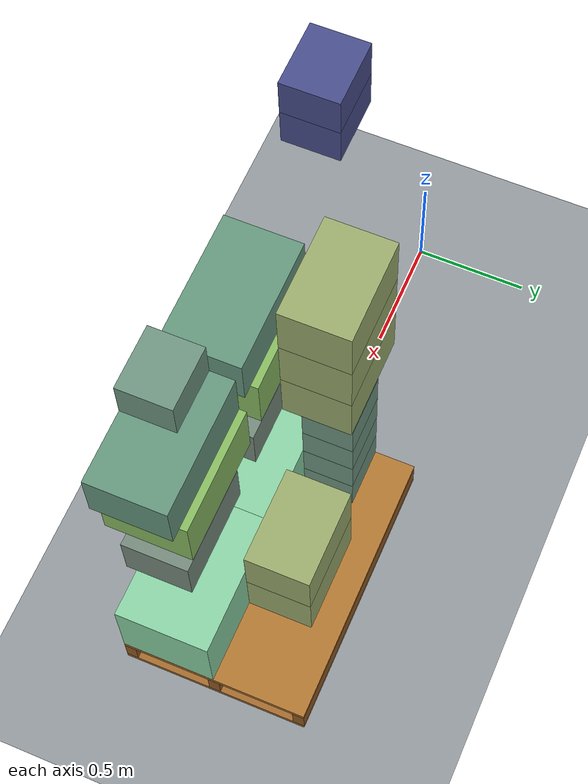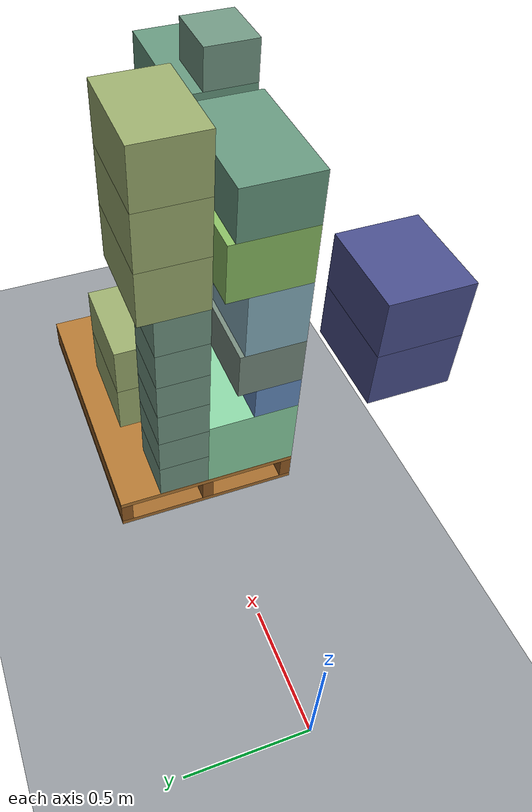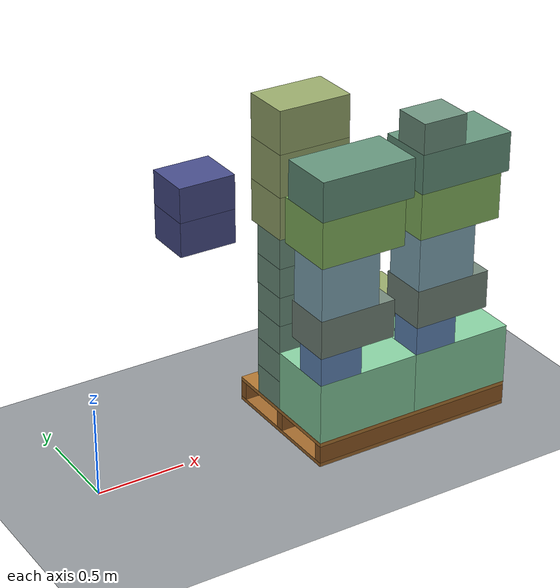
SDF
<sdf version="1.10">
 <world name="pallet_stacker_world">
  <model name="ground_plane">
   <static>true</static>
   <pose>-2.022 0 0 0 0 0</pose>
   <link name="link">
    <collision name="collision">
     <max_contacts>4</max_contacts>
     <geometry><plane><normal>0 0 1</normal><size>20 20</size></plane></geometry>
     <surface>
      <friction>
       <ode><mu>0.8</mu><mu2>0.8</mu2></ode>
       <bullet><friction>0.8</friction><friction2>0.8</friction2></bullet>
      </friction>
      <bounce><restitution_coefficient>0</restitution_coefficient><threshold>100000</threshold></bounce>
      <contact><ode><kp>1000000</kp><kd>100</kd><max_vel>1</max_vel><min_depth>0.0005</min_depth></ode></contact>
     </surface>
    </collision>
    <visual name="visual">
     <geometry><plane><normal>0 0 1</normal><size>20 20</size></plane></geometry>
     <material><ambient>0.58 0.6 0.62 1</ambient><diffuse>0.58 0.6 0.62 1</diffuse></material>
    </visual>
   </link>
  </model>
  <model name="box_p01_0023_CANS_023">
   <pose>0.45 -0.275 1.556 0 0 0</pose>
   <static>false</static>
   <link name="body">
    <inertial>
     <mass>10</mass>
     <inertia>
      <ixx>0.0790833333333</ixx>
      <ixy>0</ixy>
      <ixz>0</ixz>
      <iyy>0.102</iyy>
      <iyz>0</iyz>
      <izz>0.127083333333</izz>
     </inertia>
    </inertial>
    <collision name="collision">
     <max_contacts>4</max_contacts>
     <geometry><box><size>0.3 0.25 0.18</size></box></geometry>
     <surface>
      <friction>
       <ode><mu>0.55</mu><mu2>0.55</mu2></ode>
       <bullet><friction>0.55</friction><friction2>0.55</friction2></bullet>
      </friction>
      <bounce><restitution_coefficient>0</restitution_coefficient><threshold>100000</threshold></bounce>
      <contact><ode><kp>1000000</kp><kd>100</kd><max_vel>1</max_vel><min_depth>0.0005</min_depth></ode></contact>
     </surface>
    </collision>
    <visual name="visual">
     <geometry><box><size>0.3 0.25 0.18</size></box></geometry>
     <material>
      <ambient>0.211764705882 0.229411764706 0.411764705882 1</ambient>
      <diffuse>0.282352941176 0.305882352941 0.549019607843 1</diffuse>
      <specular>0.08 0.08 0.08 1</specular>
     </material>
    </visual>
   </link>
  </model>
  <model name="box_p01_0024_CANS_024">
   <pose>0.45 -0.275 1.736 0 0 0</pose>
   <static>false</static>
   <link name="body">
    <inertial>
     <mass>10</mass>
     <inertia>
      <ixx>0.0790833333333</ixx>
      <ixy>0</ixy>
      <ixz>0</ixz>
      <iyy>0.102</iyy>
      <iyz>0</iyz>
      <izz>0.127083333333</izz>
     </inertia>
    </inertial>
    <collision name="collision">
     <max_contacts>4</max_contacts>
     <geometry><box><size>0.3 0.25 0.18</size></box></geometry>
     <surface>
      <friction>
       <ode><mu>0.55</mu><mu2>0.55</mu2></ode>
       <bullet><friction>0.55</friction><friction2>0.55</friction2></bullet>
      </friction>
      <bounce><restitution_coefficient>0</restitution_coefficient><threshold>100000</threshold></bounce>
      <contact><ode><kp>1000000</kp><kd>100</kd><max_vel>1</max_vel><min_depth>0.0005</min_depth></ode></contact>
     </surface>
    </collision>
    <visual name="visual">
     <geometry><box><size>0.3 0.25 0.18</size></box></geometry>
     <material>
      <ambient>0.211764705882 0.229411764706 0.411764705882 1</ambient>
      <diffuse>0.282352941176 0.305882352941 0.549019607843 1</diffuse>
      <specular>0.08 0.08 0.08 1</specular>
     </material>
    </visual>
   </link>
  </model>
  <model name="pallet_02_PALLET_002" canonical_link="body">
   <pose>1.7 0 0.001 0 0 0</pose>
   <static>false</static>
   <frame name="loading_surface" attached_to="body"><pose relative_to="body">0 0 0.144 0 0 0</pose></frame>
   <link name="body">
    <inertial>
     <pose>0 0 0.072 0 0 0</pose>
     <mass>25</mass>
     <inertia>
      <ixx>1.70896776228</ixx>
      <ixy>0</ixy>
      <ixz>0</ixz>
      <iyy>3.07216082337</iyy>
      <iyz>0</iyz>
      <izz>4.63680693891</izz>
     </inertia>
    </inertial>
    <collision name="bottom_deck_collision">
     <max_contacts>4</max_contacts>
     <pose>0 0 0.011 0 0 0</pose>
     <geometry><box><size>1.2 0.8 0.022</size></box></geometry>
     <surface>
      <friction>
       <ode><mu>0.65</mu><mu2>0.65</mu2></ode>
       <bullet><friction>0.65</friction><friction2>0.65</friction2></bullet>
      </friction>
      <bounce><restitution_coefficient>0</restitution_coefficient><threshold>100000</threshold></bounce>
      <contact><ode><kp>1000000</kp><kd>100</kd><max_vel>1</max_vel><min_depth>0.0005</min_depth></ode></contact>
     </surface>
    </collision>
    <visual name="bottom_deck_visual">
     <pose>0 0 0.011 0 0 0</pose>
     <geometry><box><size>1.2 0.8 0.022</size></box></geometry>
     <material>
      <ambient>0.46 0.28 0.10 1</ambient>
      <diffuse>0.64 0.42 0.18 1</diffuse>
      <specular>0.03 0.03 0.03 1</specular>
     </material>
    </visual>
    <collision name="left_stringer_collision">
     <max_contacts>4</max_contacts>
     <pose>0 -0.375 0.072 0 0 0</pose>
     <geometry><box><size>1.2 0.05 0.1</size></box></geometry>
     <surface>
      <friction>
       <ode><mu>0.65</mu><mu2>0.65</mu2></ode>
       <bullet><friction>0.65</friction><friction2>0.65</friction2></bullet>
      </friction>
      <bounce><restitution_coefficient>0</restitution_coefficient><threshold>100000</threshold></bounce>
      <contact><ode><kp>1000000</kp><kd>100</kd><max_vel>1</max_vel><min_depth>0.0005</min_depth></ode></contact>
     </surface>
    </collision>
    <visual name="left_stringer_visual">
     <pose>0 -0.375 0.072 0 0 0</pose>
     <geometry><box><size>1.2 0.05 0.1</size></box></geometry>
     <material>
      <ambient>0.42 0.25 0.09 1</ambient>
      <diffuse>0.58 0.36 0.14 1</diffuse>
      <specular>0.03 0.03 0.03 1</specular>
     </material>
    </visual>
    <collision name="centre_stringer_collision">
     <max_contacts>4</max_contacts>
     <pose>0 0 0.072 0 0 0</pose>
     <geometry><box><size>1.2 0.05 0.1</size></box></geometry>
     <surface>
      <friction>
       <ode><mu>0.65</mu><mu2>0.65</mu2></ode>
       <bullet><friction>0.65</friction><friction2>0.65</friction2></bullet>
      </friction>
      <bounce><restitution_coefficient>0</restitution_coefficient><threshold>100000</threshold></bounce>
      <contact><ode><kp>1000000</kp><kd>100</kd><max_vel>1</max_vel><min_depth>0.0005</min_depth></ode></contact>
     </surface>
    </collision>
    <visual name="centre_stringer_visual">
     <pose>0 0 0.072 0 0 0</pose>
     <geometry><box><size>1.2 0.05 0.1</size></box></geometry>
     <material>
      <ambient>0.42 0.25 0.09 1</ambient>
      <diffuse>0.58 0.36 0.14 1</diffuse>
      <specular>0.03 0.03 0.03 1</specular>
     </material>
    </visual>
    <collision name="right_stringer_collision">
     <max_contacts>4</max_contacts>
     <pose>0 0.375 0.072 0 0 0</pose>
     <geometry><box><size>1.2 0.05 0.1</size></box></geometry>
     <surface>
      <friction>
       <ode><mu>0.65</mu><mu2>0.65</mu2></ode>
       <bullet><friction>0.65</friction><friction2>0.65</friction2></bullet>
      </friction>
      <bounce><restitution_coefficient>0</restitution_coefficient><threshold>100000</threshold></bounce>
      <contact><ode><kp>1000000</kp><kd>100</kd><max_vel>1</max_vel><min_depth>0.0005</min_depth></ode></contact>
     </surface>
    </collision>
    <visual name="right_stringer_visual">
     <pose>0 0.375 0.072 0 0 0</pose>
     <geometry><box><size>1.2 0.05 0.1</size></box></geometry>
     <material>
      <ambient>0.42 0.25 0.09 1</ambient>
      <diffuse>0.58 0.36 0.14 1</diffuse>
      <specular>0.03 0.03 0.03 1</specular>
     </material>
    </visual>
    <collision name="top_deck_collision">
     <max_contacts>4</max_contacts>
     <pose>0 0 0.133 0 0 0</pose>
     <geometry><box><size>1.2 0.8 0.022</size></box></geometry>
     <surface>
      <friction>
       <ode><mu>0.65</mu><mu2>0.65</mu2></ode>
       <bullet><friction>0.65</friction><friction2>0.65</friction2></bullet>
      </friction>
      <bounce><restitution_coefficient>0</restitution_coefficient><threshold>100000</threshold></bounce>
      <contact><ode><kp>1000000</kp><kd>100</kd><max_vel>1</max_vel><min_depth>0.0005</min_depth></ode></contact>
     </surface>
    </collision>
    <visual name="top_deck_visual">
     <pose>0 0 0.133 0 0 0</pose>
     <geometry><box><size>1.2 0.8 0.022</size></box></geometry>
     <material>
      <ambient>0.50 0.31 0.11 1</ambient>
      <diffuse>0.70 0.47 0.20 1</diffuse>
      <specular>0.03 0.03 0.03 1</specular>
     </material>
    </visual>
   </link>
  </model>
  <model name="box_p02_0001_TISSUE_M1">
   <pose>1.4 -0.2 0.321 0 0 0</pose>
   <static>false</static>
   <link name="body">
    <inertial>
     <mass>5</mass>
     <inertia>
      <ixx>0.117708333333</ixx>
      <ixy>0</ixy>
      <ixz>0</ixz>
      <iyy>0.201041666667</iyy>
      <iyz>0</iyz>
      <izz>0.216666666667</izz>
     </inertia>
    </inertial>
    <collision name="collision">
     <max_contacts>4</max_contacts>
     <geometry><box><size>0.6 0.4 0.35</size></box></geometry>
     <surface>
      <friction>
       <ode><mu>0.55</mu><mu2>0.55</mu2></ode>
       <bullet><friction>0.55</friction><friction2>0.55</friction2></bullet>
      </friction>
      <bounce><restitution_coefficient>0</restitution_coefficient><threshold>100000</threshold></bounce>
      <contact><ode><kp>1000000</kp><kd>100</kd><max_vel>1</max_vel><min_depth>0.0005</min_depth></ode></contact>
     </surface>
    </collision>
    <visual name="visual">
     <geometry><box><size>0.6 0.4 0.35</size></box></geometry>
     <material>
      <ambient>0.405882352941 0.620588235294 0.482352941176 1</ambient>
      <diffuse>0.541176470588 0.827450980392 0.643137254902 1</diffuse>
      <specular>0.08 0.08 0.08 1</specular>
     </material>
    </visual>
   </link>
  </model>
  <model name="box_p02_0002_SAUCE_M1">
   <pose>1.225 -0.3 0.576 0 0 0</pose>
   <static>false</static>
   <link name="body">
    <inertial>
     <mass>8</mass>
     <inertia>
      <ixx>0.0437333333333</ixx>
      <ixy>0</ixy>
      <ixz>0</ixz>
      <iyy>0.0587333333333</iyy>
      <iyz>0</iyz>
      <izz>0.0683333333333</izz>
     </inertia>
    </inertial>
    <collision name="collision">
     <max_contacts>4</max_contacts>
     <geometry><box><size>0.25 0.2 0.16</size></box></geometry>
     <surface>
      <friction>
       <ode><mu>0.55</mu><mu2>0.55</mu2></ode>
       <bullet><friction>0.55</friction><friction2>0.55</friction2></bullet>
      </friction>
      <bounce><restitution_coefficient>0</restitution_coefficient><threshold>100000</threshold></bounce>
      <contact><ode><kp>1000000</kp><kd>100</kd><max_vel>1</max_vel><min_depth>0.0005</min_depth></ode></contact>
     </surface>
    </collision>
    <visual name="visual">
     <geometry><box><size>0.25 0.2 0.16</size></box></geometry>
     <material>
      <ambient>0.294117647059 0.411764705882 0.564705882353 1</ambient>
      <diffuse>0.392156862745 0.549019607843 0.752941176471 1</diffuse>
      <specular>0.08 0.08 0.08 1</specular>
     </material>
    </visual>
   </link>
  </model>
  <model name="box_p02_0003_PASTA_M1">
   <pose>1.325 -0.26 0.766 0 0 0</pose>
   <static>false</static>
   <link name="body">
    <inertial>
     <mass>6</mass>
     <inertia><ixx>0.0634</ixx><ixy>0</ixy><ixz>0</ixz><iyy>0.12545</iyy><iyz>0</iyz><izz>0.14045</izz></inertia>
    </inertial>
    <collision name="collision">
     <max_contacts>4</max_contacts>
     <geometry><box><size>0.45 0.28 0.22</size></box></geometry>
     <surface>
      <friction>
       <ode><mu>0.55</mu><mu2>0.55</mu2></ode>
       <bullet><friction>0.55</friction><friction2>0.55</friction2></bullet>
      </friction>
      <bounce><restitution_coefficient>0</restitution_coefficient><threshold>100000</threshold></bounce>
      <contact><ode><kp>1000000</kp><kd>100</kd><max_vel>1</max_vel><min_depth>0.0005</min_depth></ode></contact>
     </surface>
    </collision>
    <visual name="visual">
     <geometry><box><size>0.45 0.28 0.22</size></box></geometry>
     <material>
      <ambient>0.347058823529 0.405882352941 0.367647058824 1</ambient>
      <diffuse>0.462745098039 0.541176470588 0.490196078431 1</diffuse>
      <specular>0.08 0.08 0.08 1</specular>
     </material>
    </visual>
   </link>
  </model>
  <model name="box_p02_0004_OIL_M1">
   <pose>1.275 -0.27 1.026 0 0 0</pose>
   <static>false</static>
   <link name="body">
    <inertial>
     <mass>9</mass>
     <inertia><ixx>0.1182</ixx><ixy>0</ixy><ixz>0</ixz><iyy>0.159375</iyy><iyz>0</iyz><izz>0.142575</izz></inertia>
    </inertial>
    <collision name="collision">
     <max_contacts>4</max_contacts>
     <geometry><box><size>0.35 0.26 0.3</size></box></geometry>
     <surface>
      <friction>
       <ode><mu>0.55</mu><mu2>0.55</mu2></ode>
       <bullet><friction>0.55</friction><friction2>0.55</friction2></bullet>
      </friction>
      <bounce><restitution_coefficient>0</restitution_coefficient><threshold>100000</threshold></bounce>
      <contact><ode><kp>1000000</kp><kd>100</kd><max_vel>1</max_vel><min_depth>0.0005</min_depth></ode></contact>
     </surface>
    </collision>
    <visual name="visual">
     <geometry><box><size>0.35 0.26 0.3</size></box></geometry>
     <material>
      <ambient>0.394117647059 0.514705882353 0.558823529412 1</ambient>
      <diffuse>0.525490196078 0.686274509804 0.745098039216 1</diffuse>
      <specular>0.08 0.08 0.08 1</specular>
     </material>
    </visual>
   </link>
  </model>
  <model name="box_p02_0005_PET_M1">
   <pose>1.35 -0.225 1.306 0 0 0</pose>
   <static>false</static>
   <link name="body">
    <inertial>
     <mass>11</mass>
     <inertia>
      <ixx>0.174258333333</ixx>
      <ixy>0</ixy>
      <ixz>0</ixz>
      <iyy>0.291133333333</iyy>
      <iyz>0</iyz>
      <izz>0.341458333333</izz>
     </inertia>
    </inertial>
    <collision name="collision">
     <max_contacts>4</max_contacts>
     <geometry><box><size>0.5 0.35 0.26</size></box></geometry>
     <surface>
      <friction>
       <ode><mu>0.55</mu><mu2>0.55</mu2></ode>
       <bullet><friction>0.55</friction><friction2>0.55</friction2></bullet>
      </friction>
      <bounce><restitution_coefficient>0</restitution_coefficient><threshold>100000</threshold></bounce>
      <contact><ode><kp>1000000</kp><kd>100</kd><max_vel>1</max_vel><min_depth>0.0005</min_depth></ode></contact>
     </surface>
    </collision>
    <visual name="visual">
     <geometry><box><size>0.5 0.35 0.26</size></box></geometry>
     <material>
      <ambient>0.402941176471 0.552941176471 0.288235294118 1</ambient>
      <diffuse>0.537254901961 0.737254901961 0.38431372549 1</diffuse>
      <specular>0.08 0.08 0.08 1</specular>
     </material>
    </visual>
   </link>
  </model>
  <model name="box_p02_0006_SNACK_M1">
   <pose>1.375 -0.24 1.546 0 0 0</pose>
   <static>false</static>
   <link name="body">
    <inertial>
     <mass>3.5</mass>
     <inertia>
      <ixx>0.0439833333333</ixx>
      <ixy>0</ixy>
      <ixz>0</ixz>
      <iyy>0.102345833333</iyy>
      <iyz>0</iyz>
      <izz>0.118095833333</izz>
     </inertia>
    </inertial>
    <collision name="collision">
     <max_contacts>4</max_contacts>
     <geometry><box><size>0.55 0.32 0.22</size></box></geometry>
     <surface>
      <friction>
       <ode><mu>0.55</mu><mu2>0.55</mu2></ode>
       <bullet><friction>0.55</friction><friction2>0.55</friction2></bullet>
      </friction>
      <bounce><restitution_coefficient>0</restitution_coefficient><threshold>100000</threshold></bounce>
      <contact><ode><kp>1000000</kp><kd>100</kd><max_vel>1</max_vel><min_depth>0.0005</min_depth></ode></contact>
     </surface>
    </collision>
    <visual name="visual">
     <geometry><box><size>0.55 0.32 0.22</size></box></geometry>
     <material>
      <ambient>0.3 0.444117647059 0.370588235294 1</ambient>
      <diffuse>0.4 0.592156862745 0.494117647059 1</diffuse>
      <specular>0.08 0.08 0.08 1</specular>
     </material>
    </visual>
   </link>
  </model>
  <model name="box_p02_0007_TISSUE_M2">
   <pose>2 -0.2 0.321 0 0 0</pose>
   <static>false</static>
   <link name="body">
    <inertial>
     <mass>5</mass>
     <inertia>
      <ixx>0.117708333333</ixx>
      <ixy>0</ixy>
      <ixz>0</ixz>
      <iyy>0.201041666667</iyy>
      <iyz>0</iyz>
      <izz>0.216666666667</izz>
     </inertia>
    </inertial>
    <collision name="collision">
     <max_contacts>4</max_contacts>
     <geometry><box><size>0.6 0.4 0.35</size></box></geometry>
     <surface>
      <friction>
       <ode><mu>0.55</mu><mu2>0.55</mu2></ode>
       <bullet><friction>0.55</friction><friction2>0.55</friction2></bullet>
      </friction>
      <bounce><restitution_coefficient>0</restitution_coefficient><threshold>100000</threshold></bounce>
      <contact><ode><kp>1000000</kp><kd>100</kd><max_vel>1</max_vel><min_depth>0.0005</min_depth></ode></contact>
     </surface>
    </collision>
    <visual name="visual">
     <geometry><box><size>0.6 0.4 0.35</size></box></geometry>
     <material>
      <ambient>0.405882352941 0.620588235294 0.482352941176 1</ambient>
      <diffuse>0.541176470588 0.827450980392 0.643137254902 1</diffuse>
      <specular>0.08 0.08 0.08 1</specular>
     </material>
    </visual>
   </link>
  </model>
  <model name="box_p02_0008_SAUCE_M2">
   <pose>1.825 -0.3 0.576 0 0 0</pose>
   <static>false</static>
   <link name="body">
    <inertial>
     <mass>8</mass>
     <inertia>
      <ixx>0.0437333333333</ixx>
      <ixy>0</ixy>
      <ixz>0</ixz>
      <iyy>0.0587333333333</iyy>
      <iyz>0</iyz>
      <izz>0.0683333333333</izz>
     </inertia>
    </inertial>
    <collision name="collision">
     <max_contacts>4</max_contacts>
     <geometry><box><size>0.25 0.2 0.16</size></box></geometry>
     <surface>
      <friction>
       <ode><mu>0.55</mu><mu2>0.55</mu2></ode>
       <bullet><friction>0.55</friction><friction2>0.55</friction2></bullet>
      </friction>
      <bounce><restitution_coefficient>0</restitution_coefficient><threshold>100000</threshold></bounce>
      <contact><ode><kp>1000000</kp><kd>100</kd><max_vel>1</max_vel><min_depth>0.0005</min_depth></ode></contact>
     </surface>
    </collision>
    <visual name="visual">
     <geometry><box><size>0.25 0.2 0.16</size></box></geometry>
     <material>
      <ambient>0.294117647059 0.411764705882 0.564705882353 1</ambient>
      <diffuse>0.392156862745 0.549019607843 0.752941176471 1</diffuse>
      <specular>0.08 0.08 0.08 1</specular>
     </material>
    </visual>
   </link>
  </model>
  <model name="box_p02_0009_PASTA_M2">
   <pose>1.925 -0.26 0.766 0 0 0</pose>
   <static>false</static>
   <link name="body">
    <inertial>
     <mass>6</mass>
     <inertia><ixx>0.0634</ixx><ixy>0</ixy><ixz>0</ixz><iyy>0.12545</iyy><iyz>0</iyz><izz>0.14045</izz></inertia>
    </inertial>
    <collision name="collision">
     <max_contacts>4</max_contacts>
     <geometry><box><size>0.45 0.28 0.22</size></box></geometry>
     <surface>
      <friction>
       <ode><mu>0.55</mu><mu2>0.55</mu2></ode>
       <bullet><friction>0.55</friction><friction2>0.55</friction2></bullet>
      </friction>
      <bounce><restitution_coefficient>0</restitution_coefficient><threshold>100000</threshold></bounce>
      <contact><ode><kp>1000000</kp><kd>100</kd><max_vel>1</max_vel><min_depth>0.0005</min_depth></ode></contact>
     </surface>
    </collision>
    <visual name="visual">
     <geometry><box><size>0.45 0.28 0.22</size></box></geometry>
     <material>
      <ambient>0.347058823529 0.405882352941 0.367647058824 1</ambient>
      <diffuse>0.462745098039 0.541176470588 0.490196078431 1</diffuse>
      <specular>0.08 0.08 0.08 1</specular>
     </material>
    </visual>
   </link>
  </model>
  <model name="box_p02_0010_OIL_M2">
   <pose>1.875 -0.27 1.026 0 0 0</pose>
   <static>false</static>
   <link name="body">
    <inertial>
     <mass>9</mass>
     <inertia><ixx>0.1182</ixx><ixy>0</ixy><ixz>0</ixz><iyy>0.159375</iyy><iyz>0</iyz><izz>0.142575</izz></inertia>
    </inertial>
    <collision name="collision">
     <max_contacts>4</max_contacts>
     <geometry><box><size>0.35 0.26 0.3</size></box></geometry>
     <surface>
      <friction>
       <ode><mu>0.55</mu><mu2>0.55</mu2></ode>
       <bullet><friction>0.55</friction><friction2>0.55</friction2></bullet>
      </friction>
      <bounce><restitution_coefficient>0</restitution_coefficient><threshold>100000</threshold></bounce>
      <contact><ode><kp>1000000</kp><kd>100</kd><max_vel>1</max_vel><min_depth>0.0005</min_depth></ode></contact>
     </surface>
    </collision>
    <visual name="visual">
     <geometry><box><size>0.35 0.26 0.3</size></box></geometry>
     <material>
      <ambient>0.394117647059 0.514705882353 0.558823529412 1</ambient>
      <diffuse>0.525490196078 0.686274509804 0.745098039216 1</diffuse>
      <specular>0.08 0.08 0.08 1</specular>
     </material>
    </visual>
   </link>
  </model>
  <model name="box_p02_0011_PET_M2">
   <pose>1.95 -0.225 1.306 0 0 0</pose>
   <static>false</static>
   <link name="body">
    <inertial>
     <mass>11</mass>
     <inertia>
      <ixx>0.174258333333</ixx>
      <ixy>0</ixy>
      <ixz>0</ixz>
      <iyy>0.291133333333</iyy>
      <iyz>0</iyz>
      <izz>0.341458333333</izz>
     </inertia>
    </inertial>
    <collision name="collision">
     <max_contacts>4</max_contacts>
     <geometry><box><size>0.5 0.35 0.26</size></box></geometry>
     <surface>
      <friction>
       <ode><mu>0.55</mu><mu2>0.55</mu2></ode>
       <bullet><friction>0.55</friction><friction2>0.55</friction2></bullet>
      </friction>
      <bounce><restitution_coefficient>0</restitution_coefficient><threshold>100000</threshold></bounce>
      <contact><ode><kp>1000000</kp><kd>100</kd><max_vel>1</max_vel><min_depth>0.0005</min_depth></ode></contact>
     </surface>
    </collision>
    <visual name="visual">
     <geometry><box><size>0.5 0.35 0.26</size></box></geometry>
     <material>
      <ambient>0.402941176471 0.552941176471 0.288235294118 1</ambient>
      <diffuse>0.537254901961 0.737254901961 0.38431372549 1</diffuse>
      <specular>0.08 0.08 0.08 1</specular>
     </material>
    </visual>
   </link>
  </model>
  <model name="box_p02_0012_SNACK_M2">
   <pose>1.975 -0.24 1.546 0 0 0</pose>
   <static>false</static>
   <link name="body">
    <inertial>
     <mass>3.5</mass>
     <inertia>
      <ixx>0.0439833333333</ixx>
      <ixy>0</ixy>
      <ixz>0</ixz>
      <iyy>0.102345833333</iyy>
      <iyz>0</iyz>
      <izz>0.118095833333</izz>
     </inertia>
    </inertial>
    <collision name="collision">
     <max_contacts>4</max_contacts>
     <geometry><box><size>0.55 0.32 0.22</size></box></geometry>
     <surface>
      <friction>
       <ode><mu>0.55</mu><mu2>0.55</mu2></ode>
       <bullet><friction>0.55</friction><friction2>0.55</friction2></bullet>
      </friction>
      <bounce><restitution_coefficient>0</restitution_coefficient><threshold>100000</threshold></bounce>
      <contact><ode><kp>1000000</kp><kd>100</kd><max_vel>1</max_vel><min_depth>0.0005</min_depth></ode></contact>
     </surface>
    </collision>
    <visual name="visual">
     <geometry><box><size>0.55 0.32 0.22</size></box></geometry>
     <material>
      <ambient>0.3 0.444117647059 0.370588235294 1</ambient>
      <diffuse>0.4 0.592156862745 0.494117647059 1</diffuse>
      <specular>0.08 0.08 0.08 1</specular>
     </material>
    </visual>
   </link>
  </model>
  <model name="box_p02_0013_JARS_037">
   <pose>1.83 -0.29 1.741 0 0 0</pose>
   <static>false</static>
   <link name="body">
    <inertial>
     <mass>7.5</mass>
     <inertia>
      <ixx>0.0483125</ixx>
      <ixy>0</ixy>
      <ixz>0</ixz>
      <iyy>0.0603125</iyy>
      <iyz>0</iyz>
      <izz>0.0725</izz>
     </inertia>
    </inertial>
    <collision name="collision">
     <max_contacts>4</max_contacts>
     <geometry><box><size>0.26 0.22 0.17</size></box></geometry>
     <surface>
      <friction>
       <ode><mu>0.55</mu><mu2>0.55</mu2></ode>
       <bullet><friction>0.55</friction><friction2>0.55</friction2></bullet>
      </friction>
      <bounce><restitution_coefficient>0</restitution_coefficient><threshold>100000</threshold></bounce>
      <contact><ode><kp>1000000</kp><kd>100</kd><max_vel>1</max_vel><min_depth>0.0005</min_depth></ode></contact>
     </surface>
    </collision>
    <visual name="visual">
     <geometry><box><size>0.26 0.22 0.17</size></box></geometry>
     <material>
      <ambient>0.329411764706 0.441176470588 0.382352941176 1</ambient>
      <diffuse>0.439215686275 0.588235294118 0.509803921569 1</diffuse>
      <specular>0.08 0.08 0.08 1</specular>
     </material>
    </visual>
   </link>
  </model>
  <model name="box_p02_0014_JARS_038">
   <pose>1.23 0.11 0.231 0 0 0</pose>
   <static>false</static>
   <link name="body">
    <inertial>
     <mass>7.5</mass>
     <inertia>
      <ixx>0.0483125</ixx>
      <ixy>0</ixy>
      <ixz>0</ixz>
      <iyy>0.0603125</iyy>
      <iyz>0</iyz>
      <izz>0.0725</izz>
     </inertia>
    </inertial>
    <collision name="collision">
     <max_contacts>4</max_contacts>
     <geometry><box><size>0.26 0.22 0.17</size></box></geometry>
     <surface>
      <friction>
       <ode><mu>0.55</mu><mu2>0.55</mu2></ode>
       <bullet><friction>0.55</friction><friction2>0.55</friction2></bullet>
      </friction>
      <bounce><restitution_coefficient>0</restitution_coefficient><threshold>100000</threshold></bounce>
      <contact><ode><kp>1000000</kp><kd>100</kd><max_vel>1</max_vel><min_depth>0.0005</min_depth></ode></contact>
     </surface>
    </collision>
    <visual name="visual">
     <geometry><box><size>0.26 0.22 0.17</size></box></geometry>
     <material>
      <ambient>0.329411764706 0.441176470588 0.382352941176 1</ambient>
      <diffuse>0.439215686275 0.588235294118 0.509803921569 1</diffuse>
      <specular>0.08 0.08 0.08 1</specular>
     </material>
    </visual>
   </link>
  </model>
  <model name="box_p02_0015_JARS_039">
   <pose>1.23 0.11 0.401 0 0 0</pose>
   <static>false</static>
   <link name="body">
    <inertial>
     <mass>7.5</mass>
     <inertia>
      <ixx>0.0483125</ixx>
      <ixy>0</ixy>
      <ixz>0</ixz>
      <iyy>0.0603125</iyy>
      <iyz>0</iyz>
      <izz>0.0725</izz>
     </inertia>
    </inertial>
    <collision name="collision">
     <max_contacts>4</max_contacts>
     <geometry><box><size>0.26 0.22 0.17</size></box></geometry>
     <surface>
      <friction>
       <ode><mu>0.55</mu><mu2>0.55</mu2></ode>
       <bullet><friction>0.55</friction><friction2>0.55</friction2></bullet>
      </friction>
      <bounce><restitution_coefficient>0</restitution_coefficient><threshold>100000</threshold></bounce>
      <contact><ode><kp>1000000</kp><kd>100</kd><max_vel>1</max_vel><min_depth>0.0005</min_depth></ode></contact>
     </surface>
    </collision>
    <visual name="visual">
     <geometry><box><size>0.26 0.22 0.17</size></box></geometry>
     <material>
      <ambient>0.329411764706 0.441176470588 0.382352941176 1</ambient>
      <diffuse>0.439215686275 0.588235294118 0.509803921569 1</diffuse>
      <specular>0.08 0.08 0.08 1</specular>
     </material>
    </visual>
   </link>
  </model>
  <model name="box_p02_0016_JARS_040">
   <pose>1.23 0.11 0.571 0 0 0</pose>
   <static>false</static>
   <link name="body">
    <inertial>
     <mass>7.5</mass>
     <inertia>
      <ixx>0.0483125</ixx>
      <ixy>0</ixy>
      <ixz>0</ixz>
      <iyy>0.0603125</iyy>
      <iyz>0</iyz>
      <izz>0.0725</izz>
     </inertia>
    </inertial>
    <collision name="collision">
     <max_contacts>4</max_contacts>
     <geometry><box><size>0.26 0.22 0.17</size></box></geometry>
     <surface>
      <friction>
       <ode><mu>0.55</mu><mu2>0.55</mu2></ode>
       <bullet><friction>0.55</friction><friction2>0.55</friction2></bullet>
      </friction>
      <bounce><restitution_coefficient>0</restitution_coefficient><threshold>100000</threshold></bounce>
      <contact><ode><kp>1000000</kp><kd>100</kd><max_vel>1</max_vel><min_depth>0.0005</min_depth></ode></contact>
     </surface>
    </collision>
    <visual name="visual">
     <geometry><box><size>0.26 0.22 0.17</size></box></geometry>
     <material>
      <ambient>0.329411764706 0.441176470588 0.382352941176 1</ambient>
      <diffuse>0.439215686275 0.588235294118 0.509803921569 1</diffuse>
      <specular>0.08 0.08 0.08 1</specular>
     </material>
    </visual>
   </link>
  </model>
  <model name="box_p02_0017_JARS_041">
   <pose>1.23 0.11 0.741 0 0 0</pose>
   <static>false</static>
   <link name="body">
    <inertial>
     <mass>7.5</mass>
     <inertia>
      <ixx>0.0483125</ixx>
      <ixy>0</ixy>
      <ixz>0</ixz>
      <iyy>0.0603125</iyy>
      <iyz>0</iyz>
      <izz>0.0725</izz>
     </inertia>
    </inertial>
    <collision name="collision">
     <max_contacts>4</max_contacts>
     <geometry><box><size>0.26 0.22 0.17</size></box></geometry>
     <surface>
      <friction>
       <ode><mu>0.55</mu><mu2>0.55</mu2></ode>
       <bullet><friction>0.55</friction><friction2>0.55</friction2></bullet>
      </friction>
      <bounce><restitution_coefficient>0</restitution_coefficient><threshold>100000</threshold></bounce>
      <contact><ode><kp>1000000</kp><kd>100</kd><max_vel>1</max_vel><min_depth>0.0005</min_depth></ode></contact>
     </surface>
    </collision>
    <visual name="visual">
     <geometry><box><size>0.26 0.22 0.17</size></box></geometry>
     <material>
      <ambient>0.329411764706 0.441176470588 0.382352941176 1</ambient>
      <diffuse>0.439215686275 0.588235294118 0.509803921569 1</diffuse>
      <specular>0.08 0.08 0.08 1</specular>
     </material>
    </visual>
   </link>
  </model>
  <model name="box_p02_0018_JARS_042">
   <pose>1.23 0.11 0.911 0 0 0</pose>
   <static>false</static>
   <link name="body">
    <inertial>
     <mass>7.5</mass>
     <inertia>
      <ixx>0.0483125</ixx>
      <ixy>0</ixy>
      <ixz>0</ixz>
      <iyy>0.0603125</iyy>
      <iyz>0</iyz>
      <izz>0.0725</izz>
     </inertia>
    </inertial>
    <collision name="collision">
     <max_contacts>4</max_contacts>
     <geometry><box><size>0.26 0.22 0.17</size></box></geometry>
     <surface>
      <friction>
       <ode><mu>0.55</mu><mu2>0.55</mu2></ode>
       <bullet><friction>0.55</friction><friction2>0.55</friction2></bullet>
      </friction>
      <bounce><restitution_coefficient>0</restitution_coefficient><threshold>100000</threshold></bounce>
      <contact><ode><kp>1000000</kp><kd>100</kd><max_vel>1</max_vel><min_depth>0.0005</min_depth></ode></contact>
     </surface>
    </collision>
    <visual name="visual">
     <geometry><box><size>0.26 0.22 0.17</size></box></geometry>
     <material>
      <ambient>0.329411764706 0.441176470588 0.382352941176 1</ambient>
      <diffuse>0.439215686275 0.588235294118 0.509803921569 1</diffuse>
      <specular>0.08 0.08 0.08 1</specular>
     </material>
    </visual>
   </link>
  </model>
  <model name="box_p02_0019_JARS_043">
   <pose>1.23 0.11 1.081 0 0 0</pose>
   <static>false</static>
   <link name="body">
    <inertial>
     <mass>7.5</mass>
     <inertia>
      <ixx>0.0483125</ixx>
      <ixy>0</ixy>
      <ixz>0</ixz>
      <iyy>0.0603125</iyy>
      <iyz>0</iyz>
      <izz>0.0725</izz>
     </inertia>
    </inertial>
    <collision name="collision">
     <max_contacts>4</max_contacts>
     <geometry><box><size>0.26 0.22 0.17</size></box></geometry>
     <surface>
      <friction>
       <ode><mu>0.55</mu><mu2>0.55</mu2></ode>
       <bullet><friction>0.55</friction><friction2>0.55</friction2></bullet>
      </friction>
      <bounce><restitution_coefficient>0</restitution_coefficient><threshold>100000</threshold></bounce>
      <contact><ode><kp>1000000</kp><kd>100</kd><max_vel>1</max_vel><min_depth>0.0005</min_depth></ode></contact>
     </surface>
    </collision>
    <visual name="visual">
     <geometry><box><size>0.26 0.22 0.17</size></box></geometry>
     <material>
      <ambient>0.329411764706 0.441176470588 0.382352941176 1</ambient>
      <diffuse>0.439215686275 0.588235294118 0.509803921569 1</diffuse>
      <specular>0.08 0.08 0.08 1</specular>
     </material>
    </visual>
   </link>
  </model>
  <model name="box_p02_0020_WATER_044">
   <pose>1.31 0.14 1.286 0 0 0</pose>
   <static>false</static>
   <link name="body">
    <inertial>
     <mass>13</mass>
     <inertia>
      <ixx>0.147333333333</ixx>
      <ixy>0</ixy>
      <ixz>0</ixz>
      <iyy>0.2535</iyy>
      <iyz>0</iyz>
      <izz>0.276033333333</izz>
     </inertia>
    </inertial>
    <collision name="collision">
     <max_contacts>4</max_contacts>
     <geometry><box><size>0.42 0.28 0.24</size></box></geometry>
     <surface>
      <friction>
       <ode><mu>0.55</mu><mu2>0.55</mu2></ode>
       <bullet><friction>0.55</friction><friction2>0.55</friction2></bullet>
      </friction>
      <bounce><restitution_coefficient>0</restitution_coefficient><threshold>100000</threshold></bounce>
      <contact><ode><kp>1000000</kp><kd>100</kd><max_vel>1</max_vel><min_depth>0.0005</min_depth></ode></contact>
     </surface>
    </collision>
    <visual name="visual">
     <geometry><box><size>0.42 0.28 0.24</size></box></geometry>
     <material>
      <ambient>0.455882352941 0.508823529412 0.323529411765 1</ambient>
      <diffuse>0.607843137255 0.678431372549 0.43137254902 1</diffuse>
      <specular>0.08 0.08 0.08 1</specular>
     </material>
    </visual>
   </link>
  </model>
  <model name="box_p02_0021_WATER_045">
   <pose>1.31 0.14 1.526 0 0 0</pose>
   <static>false</static>
   <link name="body">
    <inertial>
     <mass>13</mass>
     <inertia>
      <ixx>0.147333333333</ixx>
      <ixy>0</ixy>
      <ixz>0</ixz>
      <iyy>0.2535</iyy>
      <iyz>0</iyz>
      <izz>0.276033333333</izz>
     </inertia>
    </inertial>
    <collision name="collision">
     <max_contacts>4</max_contacts>
     <geometry><box><size>0.42 0.28 0.24</size></box></geometry>
     <surface>
      <friction>
       <ode><mu>0.55</mu><mu2>0.55</mu2></ode>
       <bullet><friction>0.55</friction><friction2>0.55</friction2></bullet>
      </friction>
      <bounce><restitution_coefficient>0</restitution_coefficient><threshold>100000</threshold></bounce>
      <contact><ode><kp>1000000</kp><kd>100</kd><max_vel>1</max_vel><min_depth>0.0005</min_depth></ode></contact>
     </surface>
    </collision>
    <visual name="visual">
     <geometry><box><size>0.42 0.28 0.24</size></box></geometry>
     <material>
      <ambient>0.455882352941 0.508823529412 0.323529411765 1</ambient>
      <diffuse>0.607843137255 0.678431372549 0.43137254902 1</diffuse>
      <specular>0.08 0.08 0.08 1</specular>
     </material>
    </visual>
   </link>
  </model>
  <model name="box_p02_0022_WATER_046">
   <pose>1.31 0.14 1.766 0 0 0</pose>
   <static>false</static>
   <link name="body">
    <inertial>
     <mass>13</mass>
     <inertia>
      <ixx>0.147333333333</ixx>
      <ixy>0</ixy>
      <ixz>0</ixz>
      <iyy>0.2535</iyy>
      <iyz>0</iyz>
      <izz>0.276033333333</izz>
     </inertia>
    </inertial>
    <collision name="collision">
     <max_contacts>4</max_contacts>
     <geometry><box><size>0.42 0.28 0.24</size></box></geometry>
     <surface>
      <friction>
       <ode><mu>0.55</mu><mu2>0.55</mu2></ode>
       <bullet><friction>0.55</friction><friction2>0.55</friction2></bullet>
      </friction>
      <bounce><restitution_coefficient>0</restitution_coefficient><threshold>100000</threshold></bounce>
      <contact><ode><kp>1000000</kp><kd>100</kd><max_vel>1</max_vel><min_depth>0.0005</min_depth></ode></contact>
     </surface>
    </collision>
    <visual name="visual">
     <geometry><box><size>0.42 0.28 0.24</size></box></geometry>
     <material>
      <ambient>0.455882352941 0.508823529412 0.323529411765 1</ambient>
      <diffuse>0.607843137255 0.678431372549 0.43137254902 1</diffuse>
      <specular>0.08 0.08 0.08 1</specular>
     </material>
    </visual>
   </link>
  </model>
  <model name="box_p02_0023_WATER_047">
   <pose>1.73 0.14 0.266 0 0 0</pose>
   <static>false</static>
   <link name="body">
    <inertial>
     <mass>13</mass>
     <inertia>
      <ixx>0.147333333333</ixx>
      <ixy>0</ixy>
      <ixz>0</ixz>
      <iyy>0.2535</iyy>
      <iyz>0</iyz>
      <izz>0.276033333333</izz>
     </inertia>
    </inertial>
    <collision name="collision">
     <max_contacts>4</max_contacts>
     <geometry><box><size>0.42 0.28 0.24</size></box></geometry>
     <surface>
      <friction>
       <ode><mu>0.55</mu><mu2>0.55</mu2></ode>
       <bullet><friction>0.55</friction><friction2>0.55</friction2></bullet>
      </friction>
      <bounce><restitution_coefficient>0</restitution_coefficient><threshold>100000</threshold></bounce>
      <contact><ode><kp>1000000</kp><kd>100</kd><max_vel>1</max_vel><min_depth>0.0005</min_depth></ode></contact>
     </surface>
    </collision>
    <visual name="visual">
     <geometry><box><size>0.42 0.28 0.24</size></box></geometry>
     <material>
      <ambient>0.455882352941 0.508823529412 0.323529411765 1</ambient>
      <diffuse>0.607843137255 0.678431372549 0.43137254902 1</diffuse>
      <specular>0.08 0.08 0.08 1</specular>
     </material>
    </visual>
   </link>
  </model>
  <model name="box_p02_0024_WATER_048">
   <pose>1.73 0.14 0.506 0 0 0</pose>
   <static>false</static>
   <link name="body">
    <inertial>
     <mass>13</mass>
     <inertia>
      <ixx>0.147333333333</ixx>
      <ixy>0</ixy>
      <ixz>0</ixz>
      <iyy>0.2535</iyy>
      <iyz>0</iyz>
      <izz>0.276033333333</izz>
     </inertia>
    </inertial>
    <collision name="collision">
     <max_contacts>4</max_contacts>
     <geometry><box><size>0.42 0.28 0.24</size></box></geometry>
     <surface>
      <friction>
       <ode><mu>0.55</mu><mu2>0.55</mu2></ode>
       <bullet><friction>0.55</friction><friction2>0.55</friction2></bullet>
      </friction>
      <bounce><restitution_coefficient>0</restitution_coefficient><threshold>100000</threshold></bounce>
      <contact><ode><kp>1000000</kp><kd>100</kd><max_vel>1</max_vel><min_depth>0.0005</min_depth></ode></contact>
     </surface>
    </collision>
    <visual name="visual">
     <geometry><box><size>0.42 0.28 0.24</size></box></geometry>
     <material>
      <ambient>0.455882352941 0.508823529412 0.323529411765 1</ambient>
      <diffuse>0.607843137255 0.678431372549 0.43137254902 1</diffuse>
      <specular>0.08 0.08 0.08 1</specular>
     </material>
    </visual>
   </link>
  </model>
 </world>
</sdf>
